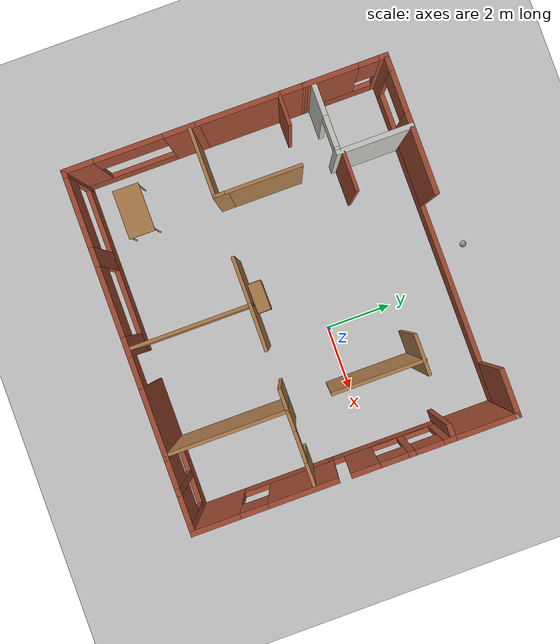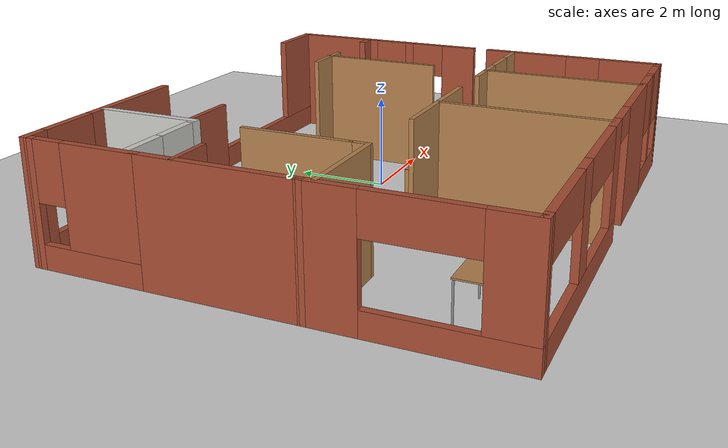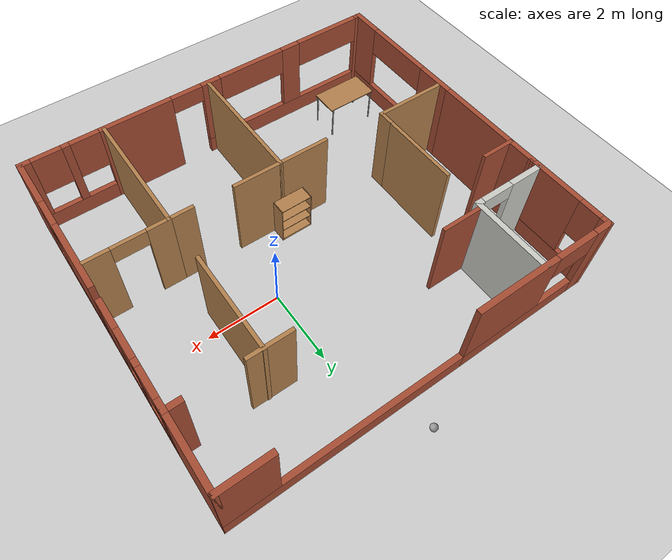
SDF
<sdf version="1.6">
 <world name="default">
  <light name="sun" type="directional">
   <pose>0 0 10 0 -0 0</pose>
   <diffuse>0.8 0.8 0.8 1</diffuse>
   <specular>0.2 0.2 0.2 1</specular>
   <attenuation>
    <range>1000</range>
    <constant>0.9</constant>
    <linear>0.01</linear>
    <quadratic>0.001</quadratic>
   </attenuation>
   <direction>-0.5 0.1 -0.9</direction>
  </light>
  <model name="ground_plane">
   <static>1</static>
   <link name="link">
    <collision name="collision">
     <geometry><plane><normal>0 0 1</normal><size>100 100</size></plane></geometry>
     <surface>
      <contact><collide_bitmask>65535</collide_bitmask></contact>
      <friction><ode><mu>100</mu><mu2>50</mu2></ode></friction>
     </surface>
    </collision>
    <visual name="visual">
     <cast_shadows>0</cast_shadows>
     <geometry><plane><normal>0 0 1</normal><size>100 100</size></plane></geometry>
     <material>
      <script><uri>file://media/materials/scripts/gazebo.material</uri><name>Gazebo/Grey</name></script>
     </material>
    </visual>
   </link>
  </model>
  <gravity>0 0 -9.8</gravity>
  <magnetic_field>6e-06 2.3e-05 -4.2e-05</magnetic_field>
  <atmosphere type="adiabatic"/>
  <physics name="default_physics" default="0" type="ode">
   <max_step_size>0.001</max_step_size>
   <real_time_factor>1</real_time_factor>
   <real_time_update_rate>1000</real_time_update_rate>
  </physics>
  <scene><ambient>0.4 0.4 0.4 1</ambient><background>0.7 0.7 0.7 1</background><shadows>1</shadows></scene>
  <spherical_coordinates>
   <surface_model>EARTH_WGS84</surface_model>
   <latitude_deg>0</latitude_deg>
   <longitude_deg>0</longitude_deg>
   <elevation>0</elevation>
   <heading_deg>0</heading_deg>
  </spherical_coordinates>
  <model name="house">
   <pose>-1.33274 -0.7309 0 0 -0 0</pose>
   <link name="Wall_0">
    <pose>-0.005105 4.64993 0 0 -0 0</pose>
    <visual name="Wall_0_Visual_0">
     <pose>-4.98947 0 1.25 0 -0 0</pose>
     <geometry><box><size>0.521056 0.15 2.5</size></box></geometry>
     <material>
      <script><uri>file://media/materials/scripts/gazebo.material</uri><name>Gazebo/Bricks</name></script>
      <ambient>1 1 1 1</ambient>
     </material>
     <meta><layer>0</layer></meta>
    </visual>
    <collision name="Wall_0_Collision_0">
     <geometry><box><size>0.521056 0.15 2.5</size></box></geometry>
     <pose>-4.98947 0 1.25 0 -0 0</pose>
    </collision>
    <visual name="Wall_0_Visual_1">
     <pose>-2.93838 0 0.25 0 -0 0</pose>
     <geometry><box><size>3.58114 0.15 0.5</size></box></geometry>
     <material>
      <script><uri>file://media/materials/scripts/gazebo.material</uri><name>Gazebo/Bricks</name></script>
      <ambient>1 1 1 1</ambient>
     </material>
     <meta><layer>0</layer></meta>
    </visual>
    <collision name="Wall_0_Collision_1">
     <geometry><box><size>3.58114 0.15 0.5</size></box></geometry>
     <pose>-2.93838 0 0.25 0 -0 0</pose>
    </collision>
    <visual name="Wall_0_Visual_2">
     <pose>2.0511 0 0.25 0 -0 0</pose>
     <geometry><box><size>6.39781 0.15 0.5</size></box></geometry>
     <material>
      <script><uri>file://media/materials/scripts/gazebo.material</uri><name>Gazebo/Bricks</name></script>
      <ambient>1 1 1 1</ambient>
     </material>
     <meta><layer>0</layer></meta>
    </visual>
    <collision name="Wall_0_Collision_2">
     <geometry><box><size>6.39781 0.15 0.5</size></box></geometry>
     <pose>2.0511 0 0.25 0 -0 0</pose>
    </collision>
    <visual name="Wall_0_Visual_3">
     <pose>4.5511 0 1.5 0 -0 0</pose>
     <geometry><box><size>1.39781 0.15 2</size></box></geometry>
     <material>
      <script><uri>file://media/materials/scripts/gazebo.material</uri><name>Gazebo/Bricks</name></script>
      <ambient>1 1 1 1</ambient>
     </material>
     <meta><layer>0</layer></meta>
    </visual>
    <collision name="Wall_0_Collision_3">
     <geometry><box><size>1.39781 0.15 2</size></box></geometry>
     <pose>4.5511 0 1.5 0 -0 0</pose>
    </collision>
    <visual name="Wall_0_Visual_4">
     <pose>-2.33838 0 1.5 0 -0 0</pose>
     <geometry><box><size>2.38114 0.15 2</size></box></geometry>
     <material>
      <script><uri>file://media/materials/scripts/gazebo.material</uri><name>Gazebo/Bricks</name></script>
      <ambient>1 1 1 1</ambient>
     </material>
     <meta><layer>0</layer></meta>
    </visual>
    <collision name="Wall_0_Collision_4">
     <geometry><box><size>2.38114 0.15 2</size></box></geometry>
     <pose>-2.33838 0 1.5 0 -0 0</pose>
    </collision>
    <visual name="Wall_0_Visual_5">
     <pose>-2.33838 0 1.5 0 -0 0</pose>
     <geometry><box><size>2.38114 0.15 2</size></box></geometry>
     <material>
      <script><uri>file://media/materials/scripts/gazebo.material</uri><name>Gazebo/Bricks</name></script>
      <ambient>1 1 1 1</ambient>
     </material>
     <meta><layer>0</layer></meta>
    </visual>
    <collision name="Wall_0_Collision_5">
     <geometry><box><size>2.38114 0.15 2</size></box></geometry>
     <pose>-2.33838 0 1.5 0 -0 0</pose>
    </collision>
    <visual name="Wall_0_Visual_6">
     <pose>-4.12894 0 2.1 0 -0 0</pose>
     <geometry><box><size>1.2 0.15 0.8</size></box></geometry>
     <material>
      <script><uri>file://media/materials/scripts/gazebo.material</uri><name>Gazebo/Bricks</name></script>
      <ambient>1 1 1 1</ambient>
     </material>
     <meta><layer>0</layer></meta>
    </visual>
    <collision name="Wall_0_Collision_6">
     <geometry><box><size>1.2 0.15 0.8</size></box></geometry>
     <pose>-4.12894 0 2.1 0 -0 0</pose>
    </collision>
   </link>
   <link name="Wall_1">
    <collision name="Wall_1_Collision">
     <geometry><box><size>0.16 0.15 2.5</size></box></geometry>
     <pose>0 0 1.25 0 -0 0</pose>
    </collision>
    <visual name="Wall_1_Visual">
     <pose>0 0 1.25 0 -0 0</pose>
     <geometry><box><size>0.16 0.15 2.5</size></box></geometry>
     <material>
      <script><uri>file://media/materials/scripts/gazebo.material</uri><name>Gazebo/Grey</name></script>
      <ambient>1 1 1 1</ambient>
     </material>
     <meta><layer>0</layer></meta>
    </visual>
    <pose>5.1749 4.64993 0 0 -0 0</pose>
   </link>
   <link name="Wall_10">
    <pose>-5.18011 -2.72507 0 0 0 -1.5708</pose>
    <visual name="Wall_10_Visual_0">
     <pose>-1.46288 0 1.25 0 -0 0</pose>
     <geometry><box><size>1.07423 0.15 2.5</size></box></geometry>
     <material>
      <script><uri>file://media/materials/scripts/gazebo.material</uri><name>Gazebo/Bricks</name></script>
      <ambient>1 1 1 1</ambient>
     </material>
     <meta><layer>0</layer></meta>
    </visual>
    <collision name="Wall_10_Collision_0">
     <geometry><box><size>1.07423 0.15 2.5</size></box></geometry>
     <pose>-1.46288 0 1.25 0 -0 0</pose>
    </collision>
    <visual name="Wall_10_Visual_1">
     <pose>0.537115 0 0.25 0 -0 0</pose>
     <geometry><box><size>2.92577 0.15 0.5</size></box></geometry>
     <material>
      <script><uri>file://media/materials/scripts/gazebo.material</uri><name>Gazebo/Bricks</name></script>
      <ambient>1 1 1 1</ambient>
     </material>
     <meta><layer>0</layer></meta>
    </visual>
    <collision name="Wall_10_Collision_1">
     <geometry><box><size>2.92577 0.15 0.5</size></box></geometry>
     <pose>0.537115 0 0.25 0 -0 0</pose>
    </collision>
    <visual name="Wall_10_Visual_2">
     <pose>1.53712 0 1.5 0 -0 0</pose>
     <geometry><box><size>0.925771 0.15 2</size></box></geometry>
     <material>
      <script><uri>file://media/materials/scripts/gazebo.material</uri><name>Gazebo/Bricks</name></script>
      <ambient>1 1 1 1</ambient>
     </material>
     <meta><layer>0</layer></meta>
    </visual>
    <collision name="Wall_10_Collision_2">
     <geometry><box><size>0.925771 0.15 2</size></box></geometry>
     <pose>1.53712 0 1.5 0 -0 0</pose>
    </collision>
    <visual name="Wall_10_Visual_3">
     <pose>0.074229 0 2.1 0 -0 0</pose>
     <geometry><box><size>2 0.15 0.8</size></box></geometry>
     <material>
      <script><uri>file://media/materials/scripts/gazebo.material</uri><name>Gazebo/Bricks</name></script>
      <ambient>1 1 1 1</ambient>
     </material>
     <meta><layer>0</layer></meta>
    </visual>
    <collision name="Wall_10_Collision_3">
     <geometry><box><size>2 0.15 0.8</size></box></geometry>
     <pose>0.074229 0 2.1 0 -0 0</pose>
    </collision>
   </link>
   <link name="Wall_11">
    <pose>-0.005105 -4.65007 0 0 -0 0</pose>
    <visual name="Wall_11_Visual_0">
     <pose>-5.12331 0 1.25 0 -0 0</pose>
     <geometry><box><size>0.253383 0.15 2.5</size></box></geometry>
     <material>
      <script><uri>file://media/materials/scripts/gazebo.material</uri><name>Gazebo/Bricks</name></script>
      <ambient>1 1 1 1</ambient>
     </material>
     <meta><layer>0</layer></meta>
    </visual>
    <collision name="Wall_11_Collision_0">
     <geometry><box><size>0.253383 0.15 2.5</size></box></geometry>
     <pose>-5.12331 0 1.25 0 -0 0</pose>
    </collision>
    <visual name="Wall_11_Visual_1">
     <pose>2.07482 0 1.25 0 -0 0</pose>
     <geometry><box><size>2.05454 0.15 2.5</size></box></geometry>
     <material>
      <script><uri>file://media/materials/scripts/gazebo.material</uri><name>Gazebo/Bricks</name></script>
      <ambient>1 1 1 1</ambient>
     </material>
     <meta><layer>0</layer></meta>
    </visual>
    <collision name="Wall_11_Collision_1">
     <geometry><box><size>2.05454 0.15 2.5</size></box></geometry>
     <pose>2.07482 0 1.25 0 -0 0</pose>
    </collision>
    <visual name="Wall_11_Visual_2">
     <pose>-2.42454 0 0.25 0 -0 0</pose>
     <geometry><box><size>5.14416 0.15 0.5</size></box></geometry>
     <material>
      <script><uri>file://media/materials/scripts/gazebo.material</uri><name>Gazebo/Bricks</name></script>
      <ambient>1 1 1 1</ambient>
     </material>
     <meta><layer>0</layer></meta>
    </visual>
    <collision name="Wall_11_Collision_2">
     <geometry><box><size>5.14416 0.15 0.5</size></box></geometry>
     <pose>-2.42454 0 0.25 0 -0 0</pose>
    </collision>
    <visual name="Wall_11_Visual_3">
     <pose>4.17604 0 0.25 0 -0 0</pose>
     <geometry><box><size>2.14792 0.15 0.5</size></box></geometry>
     <material>
      <script><uri>file://media/materials/scripts/gazebo.material</uri><name>Gazebo/Bricks</name></script>
      <ambient>1 1 1 1</ambient>
     </material>
     <meta><layer>0</layer></meta>
    </visual>
    <collision name="Wall_11_Collision_3">
     <geometry><box><size>2.14792 0.15 0.5</size></box></geometry>
     <pose>4.17604 0 0.25 0 -0 0</pose>
    </collision>
    <visual name="Wall_11_Visual_4">
     <pose>4.00684 0 1.5 0 -0 0</pose>
     <geometry><box><size>0.209515 0.15 2</size></box></geometry>
     <material>
      <script><uri>file://media/materials/scripts/gazebo.material</uri><name>Gazebo/Bricks</name></script>
      <ambient>1 1 1 1</ambient>
     </material>
     <meta><layer>0</layer></meta>
    </visual>
    <collision name="Wall_11_Collision_4">
     <geometry><box><size>0.209515 0.15 2</size></box></geometry>
     <pose>4.00684 0 1.5 0 -0 0</pose>
    </collision>
    <visual name="Wall_11_Visual_5">
     <pose>5.0808 0 1.5 0 -0 0</pose>
     <geometry><box><size>0.338402 0.15 2</size></box></geometry>
     <material>
      <script><uri>file://media/materials/scripts/gazebo.material</uri><name>Gazebo/Bricks</name></script>
      <ambient>1 1 1 1</ambient>
     </material>
     <meta><layer>0</layer></meta>
    </visual>
    <collision name="Wall_11_Collision_5">
     <geometry><box><size>0.338402 0.15 2</size></box></geometry>
     <pose>5.0808 0 1.5 0 -0 0</pose>
    </collision>
    <visual name="Wall_11_Visual_6">
     <pose>-2.71025 0 1.5 0 -0 0</pose>
     <geometry><box><size>0.572732 0.15 2</size></box></geometry>
     <material>
      <script><uri>file://media/materials/scripts/gazebo.material</uri><name>Gazebo/Bricks</name></script>
      <ambient>1 1 1 1</ambient>
     </material>
     <meta><layer>0</layer></meta>
    </visual>
    <collision name="Wall_11_Collision_6">
     <geometry><box><size>0.572732 0.15 2</size></box></geometry>
     <pose>-2.71025 0 1.5 0 -0 0</pose>
    </collision>
    <visual name="Wall_11_Visual_7">
     <pose>-0.138169 0 1.5 0 -0 0</pose>
     <geometry><box><size>0.571432 0.15 2</size></box></geometry>
     <material>
      <script><uri>file://media/materials/scripts/gazebo.material</uri><name>Gazebo/Bricks</name></script>
      <ambient>1 1 1 1</ambient>
     </material>
     <meta><layer>0</layer></meta>
    </visual>
    <collision name="Wall_11_Collision_7">
     <geometry><box><size>0.571432 0.15 2</size></box></geometry>
     <pose>-0.138169 0 1.5 0 -0 0</pose>
    </collision>
    <visual name="Wall_11_Visual_8">
     <pose>-0.138169 0 1.5 0 -0 0</pose>
     <geometry><box><size>0.571432 0.15 2</size></box></geometry>
     <material>
      <script><uri>file://media/materials/scripts/gazebo.material</uri><name>Gazebo/Bricks</name></script>
      <ambient>1 1 1 1</ambient>
     </material>
     <meta><layer>0</layer></meta>
    </visual>
    <collision name="Wall_11_Collision_8">
     <geometry><box><size>0.571432 0.15 2</size></box></geometry>
     <pose>-0.138169 0 1.5 0 -0 0</pose>
    </collision>
    <visual name="Wall_11_Visual_9">
     <pose>3.50208 0 1.9 0 -0 0</pose>
     <geometry><box><size>0.8 0.15 1.2</size></box></geometry>
     <material>
      <script><uri>file://media/materials/scripts/gazebo.material</uri><name>Gazebo/Bricks</name></script>
      <ambient>1 1 1 1</ambient>
     </material>
     <meta><layer>0</layer></meta>
    </visual>
    <collision name="Wall_11_Collision_9">
     <geometry><box><size>0.8 0.15 1.2</size></box></geometry>
     <pose>3.50208 0 1.9 0 -0 0</pose>
    </collision>
    <visual name="Wall_11_Visual_10">
     <pose>4.5116 0 1.9 0 -0 0</pose>
     <geometry><box><size>0.8 0.15 1.2</size></box></geometry>
     <material>
      <script><uri>file://media/materials/scripts/gazebo.material</uri><name>Gazebo/Bricks</name></script>
      <ambient>1 1 1 1</ambient>
     </material>
     <meta><layer>0</layer></meta>
    </visual>
    <collision name="Wall_11_Collision_10">
     <geometry><box><size>0.8 0.15 1.2</size></box></geometry>
     <pose>4.5116 0 1.9 0 -0 0</pose>
    </collision>
    <visual name="Wall_11_Visual_11">
     <pose>-3.99662 0 2.1 0 -0 0</pose>
     <geometry><box><size>2 0.15 0.8</size></box></geometry>
     <material>
      <script><uri>file://media/materials/scripts/gazebo.material</uri><name>Gazebo/Bricks</name></script>
      <ambient>1 1 1 1</ambient>
     </material>
     <meta><layer>0</layer></meta>
    </visual>
    <collision name="Wall_11_Collision_11">
     <geometry><box><size>2 0.15 0.8</size></box></geometry>
     <pose>-3.99662 0 2.1 0 -0 0</pose>
    </collision>
    <visual name="Wall_11_Visual_12">
     <pose>-1.42389 0 2.1 0 -0 0</pose>
     <geometry><box><size>2 0.15 0.8</size></box></geometry>
     <material>
      <script><uri>file://media/materials/scripts/gazebo.material</uri><name>Gazebo/Bricks</name></script>
      <ambient>1 1 1 1</ambient>
     </material>
     <meta><layer>0</layer></meta>
    </visual>
    <collision name="Wall_11_Collision_12">
     <geometry><box><size>2 0.15 0.8</size></box></geometry>
     <pose>-1.42389 0 2.1 0 -0 0</pose>
    </collision>
    <visual name="Wall_11_Visual_13">
     <pose>0.597547 0 2.25 0 -0 0</pose>
     <geometry><box><size>0.9 0.15 0.5</size></box></geometry>
     <material>
      <script><uri>file://media/materials/scripts/gazebo.material</uri><name>Gazebo/Bricks</name></script>
      <ambient>1 1 1 1</ambient>
     </material>
     <meta><layer>0</layer></meta>
    </visual>
    <collision name="Wall_11_Collision_13">
     <geometry><box><size>0.9 0.15 0.5</size></box></geometry>
     <pose>0.597547 0 2.25 0 -0 0</pose>
    </collision>
    <visual name="Wall_11_Visual_14">
     <pose>0.597547 0 2.25 0 -0 0</pose>
     <geometry><box><size>0.9 0.15 0.5</size></box></geometry>
     <material>
      <script><uri>file://media/materials/scripts/gazebo.material</uri><name>Gazebo/Bricks</name></script>
      <ambient>1 1 1 1</ambient>
     </material>
     <meta><layer>0</layer></meta>
    </visual>
    <collision name="Wall_11_Collision_14">
     <geometry><box><size>0.9 0.15 0.5</size></box></geometry>
     <pose>0.597547 0 2.25 0 -0 0</pose>
    </collision>
   </link>
   <link name="Wall_12">
    <pose>5.1699 -2.60007 0 0 -0 1.5708</pose>
    <visual name="Wall_12_Visual_0">
     <pose>-1.41047 0 1.25 0 -0 0</pose>
     <geometry><box><size>1.42906 0.15 2.5</size></box></geometry>
     <material>
      <script><uri>file://media/materials/scripts/gazebo.material</uri><name>Gazebo/Bricks</name></script>
      <ambient>1 1 1 1</ambient>
     </material>
     <meta><layer>0</layer></meta>
    </visual>
    <collision name="Wall_12_Collision_0">
     <geometry><box><size>1.42906 0.15 2.5</size></box></geometry>
     <pose>-1.41047 0 1.25 0 -0 0</pose>
    </collision>
    <visual name="Wall_12_Visual_1">
     <pose>0.714529 0 0.25 0 -0 0</pose>
     <geometry><box><size>2.82094 0.15 0.5</size></box></geometry>
     <material>
      <script><uri>file://media/materials/scripts/gazebo.material</uri><name>Gazebo/Bricks</name></script>
      <ambient>1 1 1 1</ambient>
     </material>
     <meta><layer>0</layer></meta>
    </visual>
    <collision name="Wall_12_Collision_1">
     <geometry><box><size>2.82094 0.15 0.5</size></box></geometry>
     <pose>0.714529 0 0.25 0 -0 0</pose>
    </collision>
    <visual name="Wall_12_Visual_2">
     <pose>1.11453 0 1.5 0 -0 0</pose>
     <geometry><box><size>2.02094 0.15 2</size></box></geometry>
     <material>
      <script><uri>file://media/materials/scripts/gazebo.material</uri><name>Gazebo/Bricks</name></script>
      <ambient>1 1 1 1</ambient>
     </material>
     <meta><layer>0</layer></meta>
    </visual>
    <collision name="Wall_12_Collision_2">
     <geometry><box><size>2.02094 0.15 2</size></box></geometry>
     <pose>1.11453 0 1.5 0 -0 0</pose>
    </collision>
    <visual name="Wall_12_Visual_3">
     <pose>-0.295943 0 2.1 0 -0 0</pose>
     <geometry><box><size>0.8 0.15 0.8</size></box></geometry>
     <material>
      <script><uri>file://media/materials/scripts/gazebo.material</uri><name>Gazebo/Bricks</name></script>
      <ambient>1 1 1 1</ambient>
     </material>
     <meta><layer>0</layer></meta>
    </visual>
    <collision name="Wall_12_Collision_3">
     <geometry><box><size>0.8 0.15 0.8</size></box></geometry>
     <pose>-0.295943 0 2.1 0 -0 0</pose>
    </collision>
   </link>
   <link name="Wall_14">
    <pose>5.1749 1.12493 0 0 -0 1.56781</pose>
    <visual name="Wall_14_Visual_0">
     <pose>0 0 0.25 0 -0 0</pose>
     <geometry><box><size>3.50001 0.15 0.5</size></box></geometry>
     <material>
      <script><uri>file://media/materials/scripts/gazebo.material</uri><name>Gazebo/Bricks</name></script>
      <ambient>1 1 1 1</ambient>
     </material>
     <meta><layer>0</layer></meta>
    </visual>
    <collision name="Wall_14_Collision_0">
     <geometry><box><size>3.50001 0.15 0.5</size></box></geometry>
     <pose>0 0 0.25 0 -0 0</pose>
    </collision>
    <visual name="Wall_14_Visual_1">
     <pose>-0.842712 0 1.5 0 -0 0</pose>
     <geometry><box><size>0.845127 0.15 2</size></box></geometry>
     <material>
      <script><uri>file://media/materials/scripts/gazebo.material</uri><name>Gazebo/Bricks</name></script>
      <ambient>1 1 1 1</ambient>
     </material>
     <meta><layer>0</layer></meta>
    </visual>
    <collision name="Wall_14_Collision_1">
     <geometry><box><size>0.845127 0.15 2</size></box></geometry>
     <pose>-0.842712 0 1.5 0 -0 0</pose>
    </collision>
    <visual name="Wall_14_Visual_2">
     <pose>0.484607 0 1.5 0 -0 0</pose>
     <geometry><box><size>0.20951 0.15 2</size></box></geometry>
     <material>
      <script><uri>file://media/materials/scripts/gazebo.material</uri><name>Gazebo/Bricks</name></script>
      <ambient>1 1 1 1</ambient>
     </material>
     <meta><layer>0</layer></meta>
    </visual>
    <collision name="Wall_14_Collision_2">
     <geometry><box><size>0.20951 0.15 2</size></box></geometry>
     <pose>0.484607 0 1.5 0 -0 0</pose>
    </collision>
    <visual name="Wall_14_Visual_3">
     <pose>1.56968 0 1.5 0 -0 0</pose>
     <geometry><box><size>0.360646 0.15 2</size></box></geometry>
     <material>
      <script><uri>file://media/materials/scripts/gazebo.material</uri><name>Gazebo/Bricks</name></script>
      <ambient>1 1 1 1</ambient>
     </material>
     <meta><layer>0</layer></meta>
    </visual>
    <collision name="Wall_14_Collision_3">
     <geometry><box><size>0.360646 0.15 2</size></box></geometry>
     <pose>1.56968 0 1.5 0 -0 0</pose>
    </collision>
    <visual name="Wall_14_Visual_4">
     <pose>-0.020148 0 0.5 0 -0 0</pose>
     <geometry><box><size>0.8 0.15 0.1</size></box></geometry>
     <material>
      <script><uri>file://media/materials/scripts/gazebo.material</uri><name>Gazebo/Bricks</name></script>
      <ambient>1 1 1 1</ambient>
     </material>
     <meta><layer>0</layer></meta>
    </visual>
    <collision name="Wall_14_Collision_4">
     <geometry><box><size>0.8 0.15 0.1</size></box></geometry>
     <pose>-0.020148 0 0.5 0 -0 0</pose>
    </collision>
    <visual name="Wall_14_Visual_5">
     <pose>0.989362 0 0.5 0 -0 0</pose>
     <geometry><box><size>0.8 0.15 0.1</size></box></geometry>
     <material>
      <script><uri>file://media/materials/scripts/gazebo.material</uri><name>Gazebo/Bricks</name></script>
      <ambient>1 1 1 1</ambient>
     </material>
     <meta><layer>0</layer></meta>
    </visual>
    <collision name="Wall_14_Collision_5">
     <geometry><box><size>0.8 0.15 0.1</size></box></geometry>
     <pose>0.989362 0 0.5 0 -0 0</pose>
    </collision>
    <visual name="Wall_14_Visual_6">
     <pose>-0.020148 0 2.1 0 -0 0</pose>
     <geometry><box><size>0.8 0.15 0.8</size></box></geometry>
     <material>
      <script><uri>file://media/materials/scripts/gazebo.material</uri><name>Gazebo/Bricks</name></script>
      <ambient>1 1 1 1</ambient>
     </material>
     <meta><layer>0</layer></meta>
    </visual>
    <collision name="Wall_14_Collision_6">
     <geometry><box><size>0.8 0.15 0.8</size></box></geometry>
     <pose>-0.020148 0 2.1 0 -0 0</pose>
    </collision>
    <visual name="Wall_14_Visual_7">
     <pose>0.989362 0 2.1 0 -0 0</pose>
     <geometry><box><size>0.8 0.15 0.8</size></box></geometry>
     <material>
      <script><uri>file://media/materials/scripts/gazebo.material</uri><name>Gazebo/Bricks</name></script>
      <ambient>1 1 1 1</ambient>
     </material>
     <meta><layer>0</layer></meta>
    </visual>
    <collision name="Wall_14_Collision_7">
     <geometry><box><size>0.8 0.15 0.8</size></box></geometry>
     <pose>0.989362 0 2.1 0 -0 0</pose>
    </collision>
   </link>
   <link name="Wall_19">
    <collision name="Wall_19_Collision">
     <geometry><box><size>2.25 0.15 2.5</size></box></geometry>
     <pose>0 0 1.25 0 -0 0</pose>
    </collision>
    <visual name="Wall_19_Visual">
     <pose>0 0 1.25 0 -0 0</pose>
     <geometry><box><size>2.25 0.15 2.5</size></box></geometry>
     <material>
      <script><uri>file://media/materials/scripts/gazebo.material</uri><name>Gazebo/CeilingTiled</name></script>
      <ambient>1 1 1 1</ambient>
     </material>
     <meta><layer>0</layer></meta>
    </visual>
    <pose>-3.14454 3.5858 0 0 0 -1.5708</pose>
   </link>
   <link name="Wall_2">
    <collision name="Wall_2_Collision">
     <geometry><box><size>2 0.15 2.5</size></box></geometry>
     <pose>0 0 1.25 0 -0 0</pose>
    </collision>
    <visual name="Wall_2_Visual">
     <pose>0 0 1.25 0 -0 0</pose>
     <geometry><box><size>2 0.15 2.5</size></box></geometry>
     <material>
      <script><uri>file://media/materials/scripts/gazebo.material</uri><name>Gazebo/Bricks</name></script>
      <ambient>1 1 1 1</ambient>
     </material>
     <meta><layer>0</layer></meta>
    </visual>
    <pose>5.1799 3.72493 0 0 0 -1.5708</pose>
   </link>
   <link name="Wall_20">
    <pose>-4.11954 2.53579 0 0 -0 3.14159</pose>
    <visual name="Wall_20_Visual_0">
     <pose>-0.933578 0 1.25 0 -0 0</pose>
     <geometry><box><size>0.232843 0.15 2.5</size></box></geometry>
     <material>
      <script><uri>file://media/materials/scripts/gazebo.material</uri><name>Gazebo/CeilingTiled</name></script>
      <ambient>1 1 1 1</ambient>
     </material>
     <meta><layer>0</layer></meta>
    </visual>
    <collision name="Wall_20_Collision_0">
     <geometry><box><size>0.232843 0.15 2.5</size></box></geometry>
     <pose>-0.933578 0 1.25 0 -0 0</pose>
    </collision>
    <visual name="Wall_20_Visual_1">
     <pose>0.566422 0 1.25 0 -0 0</pose>
     <geometry><box><size>0.967157 0.15 2.5</size></box></geometry>
     <material>
      <script><uri>file://media/materials/scripts/gazebo.material</uri><name>Gazebo/CeilingTiled</name></script>
      <ambient>1 1 1 1</ambient>
     </material>
     <meta><layer>0</layer></meta>
    </visual>
    <collision name="Wall_20_Collision_1">
     <geometry><box><size>0.967157 0.15 2.5</size></box></geometry>
     <pose>0.566422 0 1.25 0 -0 0</pose>
    </collision>
    <visual name="Wall_20_Visual_2">
     <pose>-0.367157 0 2.25 0 -0 0</pose>
     <geometry><box><size>0.9 0.15 0.5</size></box></geometry>
     <material>
      <script><uri>file://media/materials/scripts/gazebo.material</uri><name>Gazebo/CeilingTiled</name></script>
      <ambient>1 1 1 1</ambient>
     </material>
     <meta><layer>0</layer></meta>
    </visual>
    <collision name="Wall_20_Collision_2">
     <geometry><box><size>0.9 0.15 0.5</size></box></geometry>
     <pose>-0.367157 0 2.25 0 -0 0</pose>
    </collision>
   </link>
   <link name="Wall_22">
    <collision name="Wall_22_Collision">
     <geometry><box><size>2.25 0.1 2.5</size></box></geometry>
     <pose>0 0 1.25 0 -0 0</pose>
    </collision>
    <visual name="Wall_22_Visual">
     <pose>0 0 1.25 0 -0 0</pose>
     <geometry><box><size>2.25 0.1 2.5</size></box></geometry>
     <material>
      <script><uri>file://media/materials/scripts/gazebo.material</uri><name>Gazebo/Wood</name></script>
      <ambient>1 1 1 1</ambient>
     </material>
     <meta><layer>0</layer></meta>
    </visual>
    <pose>-3.15968 0.382182 0 0 0 -1.5708</pose>
   </link>
   <link name="Wall_23">
    <collision name="Wall_23_Collision">
     <geometry><box><size>0.45027 0.1 2.5</size></box></geometry>
     <pose>0 0 1.25 0 -0 0</pose>
    </collision>
    <visual name="Wall_23_Visual">
     <pose>0 0 1.25 0 -0 0</pose>
     <geometry><box><size>0.45027 0.1 2.5</size></box></geometry>
     <material>
      <script><uri>file://media/materials/scripts/gazebo.material</uri><name>Gazebo/Wood</name></script>
      <ambient>1 1 1 1</ambient>
     </material>
     <meta><layer>0</layer></meta>
    </visual>
    <pose>-3.15968 -0.867818 0 0 0 -1.5708</pose>
   </link>
   <link name="Wall_24">
    <collision name="Wall_24_Collision">
     <geometry><box><size>2.04957 0.1 2.5</size></box></geometry>
     <pose>0 0 1.25 0 -0 0</pose>
    </collision>
    <visual name="Wall_24_Visual">
     <pose>0 0 1.25 0 -0 0</pose>
     <geometry><box><size>2.04957 0.1 2.5</size></box></geometry>
     <material>
      <script><uri>file://media/materials/scripts/gazebo.material</uri><name>Gazebo/Wood</name></script>
      <ambient>1 1 1 1</ambient>
     </material>
     <meta><layer>0</layer></meta>
    </visual>
    <pose>-4.13468 -1.04282 0 0 -0 3.14159</pose>
   </link>
   <link name="Wall_26">
    <collision name="Wall_26_Collision">
     <geometry><box><size>0.949656 0.1 2.5</size></box></geometry>
     <pose>0 0 1.25 0 -0 0</pose>
    </collision>
    <visual name="Wall_26_Visual">
     <pose>0 0 1.25 0 -0 0</pose>
     <geometry><box><size>0.949656 0.1 2.5</size></box></geometry>
     <material>
      <script><uri>file://media/materials/scripts/gazebo.material</uri><name>Gazebo/Bricks</name></script>
      <ambient>1 1 1 1</ambient>
     </material>
     <meta><layer>0</layer></meta>
    </visual>
    <pose>-4.74968 1.54918 0 0 -0 0</pose>
   </link>
   <link name="Wall_28">
    <collision name="Wall_28_Collision">
     <geometry><box><size>1.4501 0.1 2.5</size></box></geometry>
     <pose>0 0 1.25 0 -0 0</pose>
    </collision>
    <visual name="Wall_28_Visual">
     <pose>0 0 1.25 0 -0 0</pose>
     <geometry><box><size>1.4501 0.1 2.5</size></box></geometry>
     <material>
      <script><uri>file://media/materials/scripts/gazebo.material</uri><name>Gazebo/Wood</name></script>
      <ambient>1 1 1 1</ambient>
     </material>
     <meta><layer>0</layer></meta>
    </visual>
    <pose>-0.744684 -1.13282 0 0 -0 0</pose>
   </link>
   <link name="Wall_29">
    <collision name="Wall_29_Collision">
     <geometry><box><size>3.55 0.1 2.5</size></box></geometry>
     <pose>0 0 1.25 0 -0 0</pose>
    </collision>
    <visual name="Wall_29_Visual">
     <pose>0 0 1.25 0 -0 0</pose>
     <geometry><box><size>3.55 0.1 2.5</size></box></geometry>
     <material>
      <script><uri>file://media/materials/scripts/gazebo.material</uri><name>Gazebo/Wood</name></script>
      <ambient>1 1 1 1</ambient>
     </material>
     <meta><layer>0</layer></meta>
    </visual>
    <pose>-0.069684 -2.85782 0 0 0 -1.5708</pose>
   </link>
   <link name="Wall_3">
    <collision name="Wall_3_Collision">
     <geometry><box><size>0.5 0.15 2.5</size></box></geometry>
     <pose>0 0 1.25 0 -0 0</pose>
    </collision>
    <visual name="Wall_3_Visual">
     <pose>0 0 1.25 0 -0 0</pose>
     <geometry><box><size>0.5 0.15 2.5</size></box></geometry>
     <material>
      <script><uri>file://media/materials/scripts/gazebo.material</uri><name>Gazebo/Bricks</name></script>
      <ambient>1 1 1 1</ambient>
     </material>
     <meta><layer>0</layer></meta>
    </visual>
    <pose>5.0049 2.79993 0 0 -0 3.14159</pose>
   </link>
   <link name="Wall_31">
    <pose>4.00932 -1.15982 0 0 -0 3.14159</pose>
    <visual name="Wall_31_Visual_0">
     <pose>-0.761829 0 1.25 0 -0 0</pose>
     <geometry><box><size>0.676342 0.1 2.5</size></box></geometry>
     <material>
      <script><uri>file://media/materials/scripts/gazebo.material</uri><name>Gazebo/Wood</name></script>
      <ambient>1 1 1 1</ambient>
     </material>
     <meta><layer>0</layer></meta>
    </visual>
    <collision name="Wall_31_Collision_0">
     <geometry><box><size>0.676342 0.1 2.5</size></box></geometry>
     <pose>-0.761829 0 1.25 0 -0 0</pose>
    </collision>
    <visual name="Wall_31_Visual_1">
     <pose>0.788171 0 1.25 0 -0 0</pose>
     <geometry><box><size>0.623658 0.1 2.5</size></box></geometry>
     <material>
      <script><uri>file://media/materials/scripts/gazebo.material</uri><name>Gazebo/Wood</name></script>
      <ambient>1 1 1 1</ambient>
     </material>
     <meta><layer>0</layer></meta>
    </visual>
    <collision name="Wall_31_Collision_1">
     <geometry><box><size>0.623658 0.1 2.5</size></box></geometry>
     <pose>0.788171 0 1.25 0 -0 0</pose>
    </collision>
    <visual name="Wall_31_Visual_2">
     <pose>0.026342 0 2.25 0 -0 0</pose>
     <geometry><box><size>0.9 0.1 0.5</size></box></geometry>
     <material>
      <script><uri>file://media/materials/scripts/gazebo.material</uri><name>Gazebo/Wood</name></script>
      <ambient>1 1 1 1</ambient>
     </material>
     <meta><layer>0</layer></meta>
    </visual>
    <collision name="Wall_31_Collision_2">
     <geometry><box><size>0.9 0.1 0.5</size></box></geometry>
     <pose>0.026342 0 2.25 0 -0 0</pose>
    </collision>
   </link>
   <link name="Wall_33">
    <collision name="Wall_33_Collision">
     <geometry><box><size>3.54972 0.1 2.5</size></box></geometry>
     <pose>0 0 1.25 0 -0 0</pose>
    </collision>
    <visual name="Wall_33_Visual">
     <pose>0 0 1.25 0 -0 0</pose>
     <geometry><box><size>3.54972 0.1 2.5</size></box></geometry>
     <material>
      <script><uri>file://media/materials/scripts/gazebo.material</uri><name>Gazebo/Wood</name></script>
      <ambient>1 1 1 1</ambient>
     </material>
     <meta><layer>0</layer></meta>
    </visual>
    <pose>2.95932 -2.88482 0 0 0 -1.5708</pose>
   </link>
   <link name="Wall_35">
    <collision name="Wall_35_Collision">
     <geometry><box><size>0.699932 0.1 2.5</size></box></geometry>
     <pose>0 0 1.25 0 -0 0</pose>
    </collision>
    <visual name="Wall_35_Visual">
     <pose>0 0 1.25 0 -0 0</pose>
     <geometry><box><size>0.699932 0.1 2.5</size></box></geometry>
     <material>
      <script><uri>file://media/materials/scripts/gazebo.material</uri><name>Gazebo/Wood</name></script>
      <ambient>1 1 1 1</ambient>
     </material>
     <meta><layer>0</layer></meta>
    </visual>
    <pose>2.65932 -1.15982 0 0 -0 3.14159</pose>
   </link>
   <link name="Wall_37">
    <collision name="Wall_37_Collision">
     <geometry><box><size>1.38601 0.1 2.5</size></box></geometry>
     <pose>0 0 1.25 0 -0 0</pose>
    </collision>
    <visual name="Wall_37_Visual">
     <pose>0 0 1.25 0 -0 0</pose>
     <geometry><box><size>1.38601 0.1 2.5</size></box></geometry>
     <material>
      <script><uri>file://media/materials/scripts/gazebo.material</uri><name>Gazebo/Wood</name></script>
      <ambient>1 1 1 1</ambient>
     </material>
     <meta><layer>0</layer></meta>
    </visual>
    <pose>0.573316 -1.13582 0 0 -0 3.13693</pose>
   </link>
   <link name="Wall_39">
    <collision name="Wall_39_Collision">
     <geometry><box><size>1.20042 0.1 2.5</size></box></geometry>
     <pose>0 0 1.25 0 -0 0</pose>
    </collision>
    <visual name="Wall_39_Visual">
     <pose>0 0 1.25 0 -0 0</pose>
     <geometry><box><size>1.20042 0.1 2.5</size></box></geometry>
     <material>
      <script><uri>file://media/materials/scripts/gazebo.material</uri><name>Gazebo/Wood</name></script>
      <ambient>1 1 1 1</ambient>
     </material>
     <meta><layer>0</layer></meta>
    </visual>
    <pose>2.77532 2.78718 0 0 -0 0</pose>
   </link>
   <link name="Wall_41">
    <collision name="Wall_41_Collision">
     <geometry><box><size>2.75 0.1 2.5</size></box></geometry>
     <pose>0 0 1.25 0 -0 0</pose>
    </collision>
    <visual name="Wall_41_Visual">
     <pose>0 0 1.25 0 -0 0</pose>
     <geometry><box><size>2.75 0.1 2.5</size></box></geometry>
     <material>
      <script><uri>file://media/materials/scripts/gazebo.material</uri><name>Gazebo/Wood</name></script>
      <ambient>1 1 1 1</ambient>
     </material>
     <meta><layer>0</layer></meta>
    </visual>
    <pose>2.93632 1.48118 0 0 0 -1.5708</pose>
   </link>
   <link name="Wall_43">
    <collision name="Wall_43_Collision">
     <geometry><box><size>1.15028 0.1 2.5</size></box></geometry>
     <pose>0 0 1.25 0 -0 0</pose>
    </collision>
    <visual name="Wall_43_Visual">
     <pose>0 0 1.25 0 -0 0</pose>
     <geometry><box><size>1.15028 0.1 2.5</size></box></geometry>
     <material>
      <script><uri>file://media/materials/scripts/gazebo.material</uri><name>Gazebo/Bricks</name></script>
      <ambient>1 1 1 1</ambient>
     </material>
     <meta><layer>0</layer></meta>
    </visual>
    <pose>-2.54268 2.65618 0 0 -0 3.14159</pose>
   </link>
   <link name="Wall_5">
    <pose>-5.1799 3.47506 0 0 0 -1.57062</pose>
    <visual name="Wall_5_Visual_0">
     <pose>-1.10802 0 1.25 0 -0 0</pose>
     <geometry><box><size>0.283963 0.15 2.5</size></box></geometry>
     <material>
      <script><uri>file://media/materials/scripts/gazebo.material</uri><name>Gazebo/Bricks</name></script>
      <ambient>1 1 1 1</ambient>
     </material>
     <meta><layer>0</layer></meta>
    </visual>
    <collision name="Wall_5_Collision_0">
     <geometry><box><size>0.283963 0.15 2.5</size></box></geometry>
     <pose>-1.10802 0 1.25 0 -0 0</pose>
    </collision>
    <visual name="Wall_5_Visual_1">
     <pose>0.141982 0 0.25 0 -0 0</pose>
     <geometry><box><size>2.21604 0.15 0.5</size></box></geometry>
     <material>
      <script><uri>file://media/materials/scripts/gazebo.material</uri><name>Gazebo/Bricks</name></script>
      <ambient>1 1 1 1</ambient>
     </material>
     <meta><layer>0</layer></meta>
    </visual>
    <collision name="Wall_5_Collision_1">
     <geometry><box><size>2.21604 0.15 0.5</size></box></geometry>
     <pose>0.141982 0 0.25 0 -0 0</pose>
    </collision>
    <visual name="Wall_5_Visual_2">
     <pose>0.441982 0 1.5 0 -0 0</pose>
     <geometry><box><size>1.61604 0.15 2</size></box></geometry>
     <material>
      <script><uri>file://media/materials/scripts/gazebo.material</uri><name>Gazebo/Bricks</name></script>
      <ambient>1 1 1 1</ambient>
     </material>
     <meta><layer>0</layer></meta>
    </visual>
    <collision name="Wall_5_Collision_2">
     <geometry><box><size>1.61604 0.15 2</size></box></geometry>
     <pose>0.441982 0 1.5 0 -0 0</pose>
    </collision>
    <visual name="Wall_5_Visual_3">
     <pose>-0.666037 0 1.9 0 -0 0</pose>
     <geometry><box><size>0.6 0.15 1.2</size></box></geometry>
     <material>
      <script><uri>file://media/materials/scripts/gazebo.material</uri><name>Gazebo/Bricks</name></script>
      <ambient>1 1 1 1</ambient>
     </material>
     <meta><layer>0</layer></meta>
    </visual>
    <collision name="Wall_5_Collision_3">
     <geometry><box><size>0.6 0.15 1.2</size></box></geometry>
     <pose>-0.666037 0 1.9 0 -0 0</pose>
    </collision>
   </link>
   <link name="Wall_8">
    <collision name="Wall_8_Collision">
     <geometry><box><size>3.25 0.15 2.5</size></box></geometry>
     <pose>0 0 1.25 0 -0 0</pose>
    </collision>
    <visual name="Wall_8_Visual">
     <pose>0 0 1.25 0 -0 0</pose>
     <geometry><box><size>3.25 0.15 2.5</size></box></geometry>
     <material>
      <script><uri>file://media/materials/scripts/gazebo.material</uri><name>Gazebo/Bricks</name></script>
      <ambient>1 1 1 1</ambient>
     </material>
     <meta><layer>0</layer></meta>
    </visual>
    <pose>-5.1799 0.750056 0 0 0 -1.57093</pose>
   </link>
   <static>1</static>
  </model>
  <model name="my_ball">
   <link name="link_0">
    <inertial>
     <mass>1</mass>
     <inertia><ixx>0.1</ixx><ixy>0</ixy><ixz>0</ixz><iyy>0.1</iyy><iyz>0</iyz><izz>0.1</izz></inertia>
    </inertial>
    <visual name="visual">
     <geometry><sphere><radius>0.1</radius></sphere></geometry>
     <material>
      <lighting>1</lighting>
      <script><uri>file://media/materials/scripts/gazebo.material</uri><name>Gazebo/Grey</name></script>
      <shader type="pixel"><normal_map>__default__</normal_map></shader>
      <ambient>1 1 1 1</ambient>
      <diffuse>1 1 1 1</diffuse>
      <specular>1 1 1 1</specular>
      <emissive>1 1 1 1</emissive>
     </material>
    </visual>
    <collision name="collision">
     <geometry><sphere><radius>0.1</radius></sphere></geometry>
     <surface>
      <friction>
       <ode><mu>1</mu><mu2>1</mu2><fdir1>0 0 0</fdir1><slip1>0</slip1><slip2>0</slip2></ode>
       <torsional>
        <coefficient>1</coefficient>
        <patch_radius>0</patch_radius>
        <surface_radius>0</surface_radius>
        <use_patch_radius>1</use_patch_radius>
        <ode><slip>0</slip></ode>
       </torsional>
      </friction>
      <bounce><restitution_coefficient>0</restitution_coefficient><threshold>1e+06</threshold></bounce>
      <contact>
       <collide_without_contact>0</collide_without_contact>
       <collide_without_contact_bitmask>1</collide_without_contact_bitmask>
       <collide_bitmask>1</collide_bitmask>
       <ode>
        <soft_cfm>0</soft_cfm>
        <soft_erp>0.2</soft_erp>
        <kp>1e+13</kp>
        <kd>1</kd>
        <max_vel>0.01</max_vel>
        <min_depth>0</min_depth>
       </ode>
       <bullet>
        <split_impulse>1</split_impulse>
        <split_impulse_penetration_threshold>-0.01</split_impulse_penetration_threshold>
        <soft_cfm>0</soft_cfm>
        <soft_erp>0.2</soft_erp>
        <kp>1e+13</kp>
        <kd>1</kd>
       </bullet>
      </contact>
     </surface>
    </collision>
   </link>
   <static>0</static>
   <pose>-0.992057 4.77262 0.1 0 -0 0</pose>
  </model>
  <model name="table">
   <static>1</static>
   <link name="link">
    <collision name="surface">
     <pose>0 0 1 0 -0 0</pose>
     <geometry><box><size>1.5 0.8 0.03</size></box></geometry>
     <surface><friction><ode><mu>0.6</mu><mu2>0.6</mu2></ode></friction></surface>
    </collision>
    <visual name="visual1">
     <pose>0 0 1 0 -0 0</pose>
     <geometry><box><size>1.5 0.8 0.03</size></box></geometry>
     <material>
      <script><uri>file://media/materials/scripts/gazebo.material</uri><name>Gazebo/Wood</name></script>
     </material>
    </visual>
    <collision name="front_left_leg">
     <pose>0.68 0.38 0.5 0 -0 0</pose>
     <geometry><cylinder><radius>0.02</radius><length>1</length></cylinder></geometry>
    </collision>
    <visual name="front_left_leg">
     <pose>0.68 0.38 0.5 0 -0 0</pose>
     <geometry><cylinder><radius>0.02</radius><length>1</length></cylinder></geometry>
     <material>
      <script><uri>file://media/materials/scripts/gazebo.material</uri><name>Gazebo/Grey</name></script>
     </material>
    </visual>
    <collision name="front_right_leg">
     <pose>0.68 -0.38 0.5 0 -0 0</pose>
     <geometry><cylinder><radius>0.02</radius><length>1</length></cylinder></geometry>
    </collision>
    <visual name="front_right_leg">
     <pose>0.68 -0.38 0.5 0 -0 0</pose>
     <geometry><cylinder><radius>0.02</radius><length>1</length></cylinder></geometry>
     <material>
      <script><uri>file://media/materials/scripts/gazebo.material</uri><name>Gazebo/Grey</name></script>
     </material>
    </visual>
    <collision name="back_right_leg">
     <pose>-0.68 -0.38 0.5 0 -0 0</pose>
     <geometry><cylinder><radius>0.02</radius><length>1</length></cylinder></geometry>
    </collision>
    <visual name="back_right_leg">
     <pose>-0.68 -0.38 0.5 0 -0 0</pose>
     <geometry><cylinder><radius>0.02</radius><length>1</length></cylinder></geometry>
     <material>
      <script><uri>file://media/materials/scripts/gazebo.material</uri><name>Gazebo/Grey</name></script>
     </material>
    </visual>
    <collision name="back_left_leg">
     <pose>-0.68 0.38 0.5 0 -0 0</pose>
     <geometry><cylinder><radius>0.02</radius><length>1</length></cylinder></geometry>
    </collision>
    <visual name="back_left_leg">
     <pose>-0.68 0.38 0.5 0 -0 0</pose>
     <geometry><cylinder><radius>0.02</radius><length>1</length></cylinder></geometry>
     <material>
      <script><uri>file://media/materials/scripts/gazebo.material</uri><name>Gazebo/Grey</name></script>
     </material>
    </visual>
   </link>
   <pose>-5.18782 -4.20876 0 0 -0 0</pose>
  </model>
  <model name="bookshelf">
   <static>1</static>
   <link name="link">
    <inertial><mass>1</mass></inertial>
    <collision name="back">
     <pose>0 0.005 0.6 0 -0 0</pose>
     <geometry><box><size>0.9 0.01 1.2</size></box></geometry>
    </collision>
    <visual name="visual1">
     <pose>0 0.005 0.6 0 -0 0</pose>
     <geometry><box><size>0.9 0.01 1.2</size></box></geometry>
     <material>
      <script><uri>file://media/materials/scripts/gazebo.material</uri><name>Gazebo/Wood</name></script>
     </material>
    </visual>
    <collision name="left_side">
     <pose>0.45 -0.195 0.6 0 -0 0</pose>
     <geometry><box><size>0.02 0.4 1.2</size></box></geometry>
    </collision>
    <visual name="visual2">
     <pose>0.45 -0.195 0.6 0 -0 0</pose>
     <geometry><box><size>0.02 0.4 1.2</size></box></geometry>
     <material>
      <script><uri>file://media/materials/scripts/gazebo.material</uri><name>Gazebo/Wood</name></script>
     </material>
    </visual>
    <collision name="right_side">
     <pose>-0.45 -0.195 0.6 0 -0 0</pose>
     <geometry><box><size>0.02 0.4 1.2</size></box></geometry>
    </collision>
    <visual name="visual3">
     <pose>-0.45 -0.195 0.6 0 -0 0</pose>
     <geometry><box><size>0.02 0.4 1.2</size></box></geometry>
     <material>
      <script><uri>file://media/materials/scripts/gazebo.material</uri><name>Gazebo/Wood</name></script>
     </material>
    </visual>
    <collision name="bottom">
     <pose>0 -0.195 0.03 0 -0 0</pose>
     <geometry><box><size>0.88 0.4 0.06</size></box></geometry>
    </collision>
    <visual name="visual4">
     <pose>0 -0.195 0.03 0 -0 0</pose>
     <geometry><box><size>0.88 0.4 0.06</size></box></geometry>
     <material>
      <script><uri>file://media/materials/scripts/gazebo.material</uri><name>Gazebo/Wood</name></script>
     </material>
    </visual>
    <collision name="top">
     <pose>0 -0.195 1.19 0 -0 0</pose>
     <geometry><box><size>0.88 0.4 0.02</size></box></geometry>
    </collision>
    <visual name="visual5">
     <pose>0 -0.195 1.19 0 -0 0</pose>
     <geometry><box><size>0.88 0.4 0.02</size></box></geometry>
     <material>
      <script><uri>file://media/materials/scripts/gazebo.material</uri><name>Gazebo/Wood</name></script>
     </material>
    </visual>
    <collision name="low_shelf">
     <pose>0 -0.195 0.43 0 -0 0</pose>
     <geometry><box><size>0.88 0.4 0.02</size></box></geometry>
    </collision>
    <visual name="visual6">
     <pose>0 -0.195 0.43 0 -0 0</pose>
     <geometry><box><size>0.88 0.4 0.02</size></box></geometry>
     <material>
      <script><uri>file://media/materials/scripts/gazebo.material</uri><name>Gazebo/Wood</name></script>
     </material>
    </visual>
    <collision name="high_shelf">
     <pose>0 -0.195 0.8 0 -0 0</pose>
     <geometry><box><size>0.88 0.4 0.02</size></box></geometry>
    </collision>
    <visual name="visual7">
     <pose>0 -0.195 0.8 0 -0 0</pose>
     <geometry><box><size>0.88 0.4 0.02</size></box></geometry>
     <material>
      <script><uri>file://media/materials/scripts/gazebo.material</uri><name>Gazebo/Wood</name></script>
     </material>
    </visual>
   </link>
   <pose>-1.56255 -1.80281 0 0 0 -3.13223</pose>
  </model>
 </world>
</sdf>
